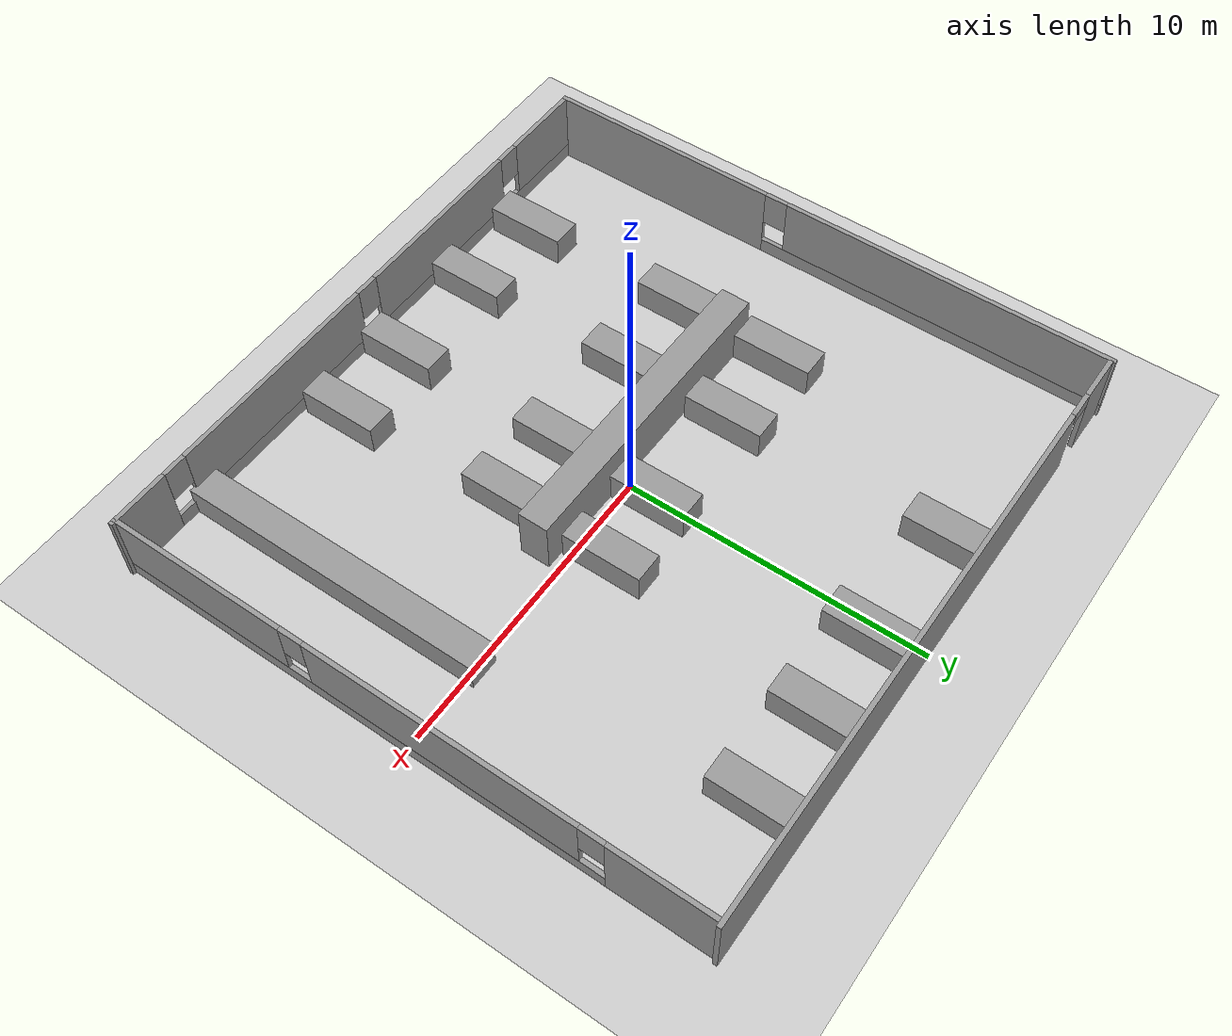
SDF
<sdf version="1.7">
 <world name="default">
  <model name="ground_plane">
   <static>1</static>
   <link name="link">
    <collision name="collision">
     <geometry><plane><normal>0 0 1</normal><size>100 100</size></plane></geometry>
     <surface><friction><ode><mu>100</mu><mu2>50</mu2></ode></friction></surface>
    </collision>
    <visual name="visual">
     <cast_shadows>0</cast_shadows>
     <geometry><plane><normal>0 0 1</normal><size>100 100</size></plane></geometry>
     <material>
      <script><uri>file://media/materials/scripts/gazebo.material</uri><name>Gazebo/Grey</name></script>
     </material>
    </visual>
   </link>
  </model>
  <light name="sun" type="directional">
   <pose>0 0 10 0 -0 0</pose>
   <diffuse>0.8 0.8 0.8 1</diffuse>
   <specular>0.2 0.2 0.2 1</specular>
   <attenuation>
    <range>1000</range>
    <constant>0.9</constant>
    <linear>0.01</linear>
    <quadratic>0.001</quadratic>
   </attenuation>
   <direction>-0.5 0.1 -0.9</direction>
   <spot><inner_angle>0</inner_angle><outer_angle>0</outer_angle><falloff>0</falloff></spot>
  </light>
  <gravity>0 0 -9.8</gravity>
  <model name="Mur_smart_resto">
   <static>1</static>
   <pose>0.070005 0.051909 0 0 -0 0</pose>
   <link name="Wall_10">
    <pose>-10.4753 0.025889 0 0 -0 1.57063</pose>
    <visual name="Wall_10_Visual_0">
     <pose>-6.06646 0 1.25 0 -0 0</pose>
     <geometry><box><size>7.99946 0.15 2.5</size></box></geometry>
     <material>
      <script><uri>file://media/materials/scripts/gazebo.material</uri><name>Gazebo/Grey</name></script>
     </material>
    </visual>
    <collision name="Wall_10_Collision_0">
     <geometry><box><size>7.99946 0.15 2.5</size></box></geometry>
     <pose>-6.06646 0 1.25 0 -0 0</pose>
    </collision>
    <visual name="Wall_10_Visual_1">
     <pose>3.99973 0 0.25 0 -0 0</pose>
     <geometry><box><size>12.1329 0.15 0.5</size></box></geometry>
     <material>
      <script><uri>file://media/materials/scripts/gazebo.material</uri><name>Gazebo/Grey</name></script>
     </material>
    </visual>
    <collision name="Wall_10_Collision_1">
     <geometry><box><size>12.1329 0.15 0.5</size></box></geometry>
     <pose>3.99973 0 0.25 0 -0 0</pose>
    </collision>
    <visual name="Wall_10_Visual_2">
     <pose>4.39973 0 1.5 0 -0 0</pose>
     <geometry><box><size>11.3329 0.15 2</size></box></geometry>
     <material>
      <script><uri>file://media/materials/scripts/gazebo.material</uri><name>Gazebo/Grey</name></script>
     </material>
    </visual>
    <collision name="Wall_10_Collision_2">
     <geometry><box><size>11.3329 0.15 2</size></box></geometry>
     <pose>4.39973 0 1.5 0 -0 0</pose>
    </collision>
    <visual name="Wall_10_Visual_3">
     <pose>-1.66672 0 1.9 0 -0 0</pose>
     <geometry><box><size>0.8 0.15 1.2</size></box></geometry>
     <material>
      <script><uri>file://media/materials/scripts/gazebo.material</uri><name>Gazebo/Grey</name></script>
     </material>
    </visual>
    <collision name="Wall_10_Collision_3">
     <geometry><box><size>0.8 0.15 1.2</size></box></geometry>
     <pose>-1.66672 0 1.9 0 -0 0</pose>
    </collision>
   </link>
   <link name="Wall_7">
    <pose>0.062174 9.88656 0 0 -0 -0.005133</pose>
    <visual name="Wall_7_Visual_0">
     <pose>-9.71026 0 1.25 0 -0 0</pose>
     <geometry><box><size>1.55886 0.15 2.5</size></box></geometry>
     <material>
      <script><uri>file://media/materials/scripts/gazebo.material</uri><name>Gazebo/Grey</name></script>
     </material>
    </visual>
    <collision name="Wall_7_Collision_0">
     <geometry><box><size>1.55886 0.15 2.5</size></box></geometry>
     <pose>-9.71026 0 1.25 0 -0 0</pose>
    </collision>
    <visual name="Wall_7_Visual_1">
     <pose>1.22943 0 1.25 0 -0 0</pose>
     <geometry><box><size>18.5205 0.15 2.5</size></box></geometry>
     <material>
      <script><uri>file://media/materials/scripts/gazebo.material</uri><name>Gazebo/Grey</name></script>
     </material>
    </visual>
    <collision name="Wall_7_Collision_1">
     <geometry><box><size>18.5205 0.15 2.5</size></box></geometry>
     <pose>1.22943 0 1.25 0 -0 0</pose>
    </collision>
    <visual name="Wall_7_Visual_2">
     <pose>-8.48083 0 2.25 0 -0 0</pose>
     <geometry><box><size>0.9 0.15 0.5</size></box></geometry>
     <material>
      <script><uri>file://media/materials/scripts/gazebo.material</uri><name>Gazebo/Grey</name></script>
     </material>
    </visual>
    <collision name="Wall_7_Collision_2">
     <geometry><box><size>0.9 0.15 0.5</size></box></geometry>
     <pose>-8.48083 0 2.25 0 -0 0</pose>
    </collision>
   </link>
   <link name="Wall_8">
    <pose>10.3709 -0.091904 0 0 -0 -1.5708</pose>
    <visual name="Wall_8_Visual_0">
     <pose>-8.27842 0 1.25 0 -0 0</pose>
     <geometry><box><size>3.44316 0.15 2.5</size></box></geometry>
     <material>
      <script><uri>file://media/materials/scripts/gazebo.material</uri><name>Gazebo/Grey</name></script>
     </material>
    </visual>
    <collision name="Wall_8_Collision_0">
     <geometry><box><size>3.44316 0.15 2.5</size></box></geometry>
     <pose>-8.27842 0 1.25 0 -0 0</pose>
    </collision>
    <visual name="Wall_8_Visual_1">
     <pose>1.72158 0 0.25 0 -0 0</pose>
     <geometry><box><size>16.5568 0.15 0.5</size></box></geometry>
     <material>
      <script><uri>file://media/materials/scripts/gazebo.material</uri><name>Gazebo/Grey</name></script>
     </material>
    </visual>
    <collision name="Wall_8_Collision_1">
     <geometry><box><size>16.5568 0.15 0.5</size></box></geometry>
     <pose>1.72158 0 0.25 0 -0 0</pose>
    </collision>
    <visual name="Wall_8_Visual_2">
     <pose>-1.31032 0 1.5 0 -0 0</pose>
     <geometry><box><size>8.89304 0.15 2</size></box></geometry>
     <material>
      <script><uri>file://media/materials/scripts/gazebo.material</uri><name>Gazebo/Grey</name></script>
     </material>
    </visual>
    <collision name="Wall_8_Collision_2">
     <geometry><box><size>8.89304 0.15 2</size></box></geometry>
     <pose>-1.31032 0 1.5 0 -0 0</pose>
    </collision>
    <visual name="Wall_8_Visual_3">
     <pose>6.9681 0 1.5 0 -0 0</pose>
     <geometry><box><size>6.06379 0.15 2</size></box></geometry>
     <material>
      <script><uri>file://media/materials/scripts/gazebo.material</uri><name>Gazebo/Grey</name></script>
     </material>
    </visual>
    <collision name="Wall_8_Collision_3">
     <geometry><box><size>6.06379 0.15 2</size></box></geometry>
     <pose>6.9681 0 1.5 0 -0 0</pose>
    </collision>
    <visual name="Wall_8_Visual_4">
     <pose>-6.15684 0 1.9 0 -0 0</pose>
     <geometry><box><size>0.8 0.15 1.2</size></box></geometry>
     <material>
      <script><uri>file://media/materials/scripts/gazebo.material</uri><name>Gazebo/Grey</name></script>
     </material>
    </visual>
    <collision name="Wall_8_Collision_4">
     <geometry><box><size>0.8 0.15 1.2</size></box></geometry>
     <pose>-6.15684 0 1.9 0 -0 0</pose>
    </collision>
    <visual name="Wall_8_Visual_5">
     <pose>3.53621 0 1.9 0 -0 0</pose>
     <geometry><box><size>0.8 0.15 1.2</size></box></geometry>
     <material>
      <script><uri>file://media/materials/scripts/gazebo.material</uri><name>Gazebo/Grey</name></script>
     </material>
    </visual>
    <collision name="Wall_8_Collision_5">
     <geometry><box><size>0.8 0.15 1.2</size></box></geometry>
     <pose>3.53621 0 1.9 0 -0 0</pose>
    </collision>
   </link>
   <link name="Wall_9">
    <pose>-9.8e-05 -9.9911 0 0 -0 3.13913</pose>
    <visual name="Wall_9_Visual_0">
     <pose>-9.52605 0 1.25 0 -0 0</pose>
     <geometry><box><size>2.05161 0.15 2.5</size></box></geometry>
     <material>
      <script><uri>file://media/materials/scripts/gazebo.material</uri><name>Gazebo/Grey</name></script>
     </material>
    </visual>
    <collision name="Wall_9_Collision_0">
     <geometry><box><size>2.05161 0.15 2.5</size></box></geometry>
     <pose>-9.52605 0 1.25 0 -0 0</pose>
    </collision>
    <visual name="Wall_9_Visual_1">
     <pose>1.02581 0 0.25 0 -0 0</pose>
     <geometry><box><size>19.0521 0.15 0.5</size></box></geometry>
     <material>
      <script><uri>file://media/materials/scripts/gazebo.material</uri><name>Gazebo/Grey</name></script>
     </material>
    </visual>
    <collision name="Wall_9_Collision_1">
     <geometry><box><size>19.0521 0.15 0.5</size></box></geometry>
     <pose>1.02581 0 0.25 0 -0 0</pose>
    </collision>
    <visual name="Wall_9_Visual_2">
     <pose>-3.95634 0 1.5 0 -0 0</pose>
     <geometry><box><size>7.48782 0.15 2</size></box></geometry>
     <material>
      <script><uri>file://media/materials/scripts/gazebo.material</uri><name>Gazebo/Grey</name></script>
     </material>
    </visual>
    <collision name="Wall_9_Collision_2">
     <geometry><box><size>7.48782 0.15 2</size></box></geometry>
     <pose>-3.95634 0 1.5 0 -0 0</pose>
    </collision>
    <visual name="Wall_9_Visual_3">
     <pose>3.71414 0 1.5 0 -0 0</pose>
     <geometry><box><size>6.25314 0.15 2</size></box></geometry>
     <material>
      <script><uri>file://media/materials/scripts/gazebo.material</uri><name>Gazebo/Grey</name></script>
     </material>
    </visual>
    <collision name="Wall_9_Collision_3">
     <geometry><box><size>6.25314 0.15 2</size></box></geometry>
     <pose>3.71414 0 1.5 0 -0 0</pose>
    </collision>
    <visual name="Wall_9_Visual_4">
     <pose>9.09628 0 1.5 0 -0 0</pose>
     <geometry><box><size>2.91115 0.15 2</size></box></geometry>
     <material>
      <script><uri>file://media/materials/scripts/gazebo.material</uri><name>Gazebo/Grey</name></script>
     </material>
    </visual>
    <collision name="Wall_9_Collision_4">
     <geometry><box><size>2.91115 0.15 2</size></box></geometry>
     <pose>9.09628 0 1.5 0 -0 0</pose>
    </collision>
    <visual name="Wall_9_Visual_5">
     <pose>-8.10025 0 1.9 0 -0 0</pose>
     <geometry><box><size>0.8 0.15 1.2</size></box></geometry>
     <material>
      <script><uri>file://media/materials/scripts/gazebo.material</uri><name>Gazebo/Grey</name></script>
     </material>
    </visual>
    <collision name="Wall_9_Collision_5">
     <geometry><box><size>0.8 0.15 1.2</size></box></geometry>
     <pose>-8.10025 0 1.9 0 -0 0</pose>
    </collision>
    <visual name="Wall_9_Visual_6">
     <pose>0.187568 0 1.9 0 -0 0</pose>
     <geometry><box><size>0.8 0.15 1.2</size></box></geometry>
     <material>
      <script><uri>file://media/materials/scripts/gazebo.material</uri><name>Gazebo/Grey</name></script>
     </material>
    </visual>
    <collision name="Wall_9_Collision_6">
     <geometry><box><size>0.8 0.15 1.2</size></box></geometry>
     <pose>0.187568 0 1.9 0 -0 0</pose>
    </collision>
    <visual name="Wall_9_Visual_7">
     <pose>7.24071 0 1.9 0 -0 0</pose>
     <geometry><box><size>0.8 0.15 1.2</size></box></geometry>
     <material>
      <script><uri>file://media/materials/scripts/gazebo.material</uri><name>Gazebo/Grey</name></script>
     </material>
    </visual>
    <collision name="Wall_9_Collision_7">
     <geometry><box><size>0.8 0.15 1.2</size></box></geometry>
     <pose>7.24071 0 1.9 0 -0 0</pose>
    </collision>
   </link>
  </model>
  <model name="table_12">
   <static>1</static>
   <pose>-3.49966 -8.58391 0.5 0 -0 0</pose>
   <link name="link">
    <collision name="collision"><geometry><box><size>1 2.66361 1</size></box></geometry></collision>
    <visual name="visual">
     <geometry><box><size>1 2.66361 1</size></box></geometry>
     <material>
      <script><name>Gazebo/Grey</name><uri>file://media/materials/scripts/gazebo.material</uri></script>
     </material>
    </visual>
   </link>
  </model>
  <model name="Table_13">
   <static>1</static>
   <pose>0.016216 -8.50881 0.5 0 -0 0</pose>
   <link name="link">
    <collision name="collision"><geometry><box><size>1 2.66361 1</size></box></geometry></collision>
    <visual name="visual">
     <geometry><box><size>1 2.66361 1</size></box></geometry>
     <material>
      <script><name>Gazebo/Grey</name><uri>file://media/materials/scripts/gazebo.material</uri></script>
     </material>
    </visual>
   </link>
  </model>
  <model name="Bar">
   <static>1</static>
   <pose>7.45041 -4.83434 0.5 0 -0 0</pose>
   <link name="link">
    <collision name="collision"><geometry><box><size>1 10.2687 1</size></box></geometry></collision>
    <visual name="visual">
     <geometry><box><size>1 10.2687 1</size></box></geometry>
     <material>
      <script><name>Gazebo/Grey</name><uri>file://media/materials/scripts/gazebo.material</uri></script>
     </material>
    </visual>
   </link>
  </model>
  <model name="table_23">
   <static>1</static>
   <pose>0.037866 -2.60829 0.5 0 -0 0</pose>
   <link name="link">
    <collision name="collision"><geometry><box><size>1 2.66361 1</size></box></geometry></collision>
    <visual name="visual">
     <geometry><box><size>1 2.66361 1</size></box></geometry>
     <material>
      <script><name>Gazebo/Grey</name><uri>file://media/materials/scripts/gazebo.material</uri></script>
     </material>
    </visual>
   </link>
  </model>
  <model name="table_22">
   <static>1</static>
   <pose>-3.52904 -2.63976 0.5 0 -0 0</pose>
   <link name="link">
    <collision name="collision"><geometry><box><size>1 2.66361 1</size></box></geometry></collision>
    <visual name="visual">
     <geometry><box><size>1 2.66361 1</size></box></geometry>
     <material>
      <script><name>Gazebo/Grey</name><uri>file://media/materials/scripts/gazebo.material</uri></script>
     </material>
    </visual>
   </link>
  </model>
  <model name="table_21">
   <static>1</static>
   <pose>-6.57978 -2.6451 0.5 0 -0 0</pose>
   <link name="link">
    <collision name="collision"><geometry><box><size>1 2.66361 1</size></box></geometry></collision>
    <visual name="visual">
     <geometry><box><size>1 2.66361 1</size></box></geometry>
     <material>
      <script><name>Gazebo/Grey</name><uri>file://media/materials/scripts/gazebo.material</uri></script>
     </material>
    </visual>
   </link>
  </model>
  <model name="Table_2">
   <static>1</static>
   <pose>-6.51182 0.029884 0.5 0 -0 0</pose>
   <link name="link">
    <collision name="collision"><geometry><box><size>1 0.667478 0.20326</size></box></geometry></collision>
    <visual name="visual">
     <geometry><box><size>1 0.667478 0.20326</size></box></geometry>
     <material>
      <script><name>Gazebo/Grey</name><uri>file://media/materials/scripts/gazebo.material</uri></script>
     </material>
    </visual>
   </link>
  </model>
  <model name="table_33">
   <static>1</static>
   <pose>0.116693 0.917075 0.5 0 -0 0</pose>
   <link name="link">
    <collision name="collision"><geometry><box><size>1 2.66361 1</size></box></geometry></collision>
    <visual name="visual">
     <geometry><box><size>1 2.66361 1</size></box></geometry>
     <material>
      <script><name>Gazebo/Grey</name><uri>file://media/materials/scripts/gazebo.material</uri></script>
     </material>
    </visual>
   </link>
  </model>
  <model name="table_32">
   <static>1</static>
   <pose>-3.59358 1.15101 0.5 0 -0 0</pose>
   <link name="link">
    <collision name="collision"><geometry><box><size>1 2.66361 1</size></box></geometry></collision>
    <visual name="visual">
     <geometry><box><size>1 2.66361 1</size></box></geometry>
     <material>
      <script><name>Gazebo/Grey</name><uri>file://media/materials/scripts/gazebo.material</uri></script>
     </material>
    </visual>
   </link>
  </model>
  <model name="table_31">
   <static>1</static>
   <pose>-6.45855 1.07215 0.5 0 -0 0</pose>
   <link name="link">
    <collision name="collision"><geometry><box><size>1 2.66361 1</size></box></geometry></collision>
    <visual name="visual">
     <geometry><box><size>1 2.66361 1</size></box></geometry>
     <material>
      <script><name>Gazebo/Grey</name><uri>file://media/materials/scripts/gazebo.material</uri></script>
     </material>
    </visual>
   </link>
  </model>
  <model name="table_41">
   <static>1</static>
   <pose>-3.53421 8.65679 0.5 0 -0 0</pose>
   <link name="link">
    <collision name="collision"><geometry><box><size>1 2.66361 1</size></box></geometry></collision>
    <visual name="visual">
     <geometry><box><size>1 2.66361 1</size></box></geometry>
     <material>
      <script><name>Gazebo/Grey</name><uri>file://media/materials/scripts/gazebo.material</uri></script>
     </material>
    </visual>
   </link>
  </model>
  <model name="table_42">
   <static>1</static>
   <pose>0.488269 8.38668 0.5 0 -0 0</pose>
   <link name="link">
    <collision name="collision"><geometry><box><size>1 2.66361 1</size></box></geometry></collision>
    <visual name="visual">
     <geometry><box><size>1 2.66361 1</size></box></geometry>
     <material>
      <script><name>Gazebo/Grey</name><uri>file://media/materials/scripts/gazebo.material</uri></script>
     </material>
    </visual>
   </link>
  </model>
  <model name="table_34">
   <static>1</static>
   <pose>2.56397 1.07046 0.5 0 -0 0</pose>
   <link name="link">
    <collision name="collision"><geometry><box><size>1 2.66361 1</size></box></geometry></collision>
    <visual name="visual">
     <geometry><box><size>1 2.66361 1</size></box></geometry>
     <material>
      <script><name>Gazebo/Grey</name><uri>file://media/materials/scripts/gazebo.material</uri></script>
     </material>
    </visual>
   </link>
  </model>
  <model name="table_24">
   <static>1</static>
   <pose>2.50913 -2.59064 0.5 0 -0 0</pose>
   <link name="link">
    <collision name="collision"><geometry><box><size>1 2.66361 1</size></box></geometry></collision>
    <visual name="visual">
     <geometry><box><size>1 2.66361 1</size></box></geometry>
     <material>
      <script><name>Gazebo/Grey</name><uri>file://media/materials/scripts/gazebo.material</uri></script>
     </material>
    </visual>
   </link>
  </model>
  <model name="table_14">
   <static>1</static>
   <pose>2.84165 -8.41818 0.5 0 -0 0</pose>
   <link name="link">
    <collision name="collision"><geometry><box><size>1 2.66361 1</size></box></geometry></collision>
    <visual name="visual">
     <geometry><box><size>1 2.66361 1</size></box></geometry>
     <material>
      <script><name>Gazebo/Grey</name><uri>file://media/materials/scripts/gazebo.material</uri></script>
     </material>
    </visual>
   </link>
  </model>
  <model name="table_43">
   <static>1</static>
   <pose>3.44204 8.4719 0.5 0 -0 0</pose>
   <link name="link">
    <collision name="collision"><geometry><box><size>1 2.66361 1</size></box></geometry></collision>
    <visual name="visual">
     <geometry><box><size>1 2.66361 1</size></box></geometry>
     <material>
      <script><name>Gazebo/Grey</name><uri>file://media/materials/scripts/gazebo.material</uri></script>
     </material>
    </visual>
   </link>
  </model>
  <model name="table_44">
   <static>1</static>
   <pose>6.48712 8.46147 0.5 0 -0 0</pose>
   <link name="link">
    <collision name="collision"><geometry><box><size>1 2.66361 1</size></box></geometry></collision>
    <visual name="visual">
     <geometry><box><size>1 2.66361 1</size></box></geometry>
     <material>
      <script><name>Gazebo/Grey</name><uri>file://media/materials/scripts/gazebo.material</uri></script>
     </material>
    </visual>
   </link>
  </model>
  <magnetic_field>6e-06 2.3e-05 -4.2e-05</magnetic_field>
  <atmosphere type="adiabatic"/>
  <physics type="ode">
   <max_step_size>0.001</max_step_size>
   <real_time_factor>1</real_time_factor>
   <real_time_update_rate>1000</real_time_update_rate>
  </physics>
  <scene><ambient>0.4 0.4 0.4 1</ambient><background>0.7 0.7 0.7 1</background><shadows>1</shadows></scene>
  <spherical_coordinates>
   <surface_model>EARTH_WGS84</surface_model>
   <latitude_deg>0</latitude_deg>
   <longitude_deg>0</longitude_deg>
   <elevation>0</elevation>
   <heading_deg>0</heading_deg>
  </spherical_coordinates>
  <model name="table_11">
   <static>1</static>
   <pose>-6.52883 -8.43574 0.5 0 -0 0</pose>
   <link name="link">
    <collision name="collision"><geometry><box><size>1 2.66361 1</size></box></geometry></collision>
    <visual name="visual">
     <geometry><box><size>1 2.66361 1</size></box></geometry>
     <material>
      <script><name>Gazebo/Grey</name><uri>file://media/materials/scripts/gazebo.material</uri></script>
     </material>
    </visual>
   </link>
  </model>
  <model name="separation_rangee">
   <static>1</static>
   <pose>-1.55044 -0.794645 0.500001 1e-05 -0.001133 -1.57933</pose>
   <link name="link">
    <collision name="collision"><geometry><box><size>1 10.3403 2.62744</size></box></geometry></collision>
    <visual name="visual">
     <geometry><box><size>1 10.3403 2.62744</size></box></geometry>
     <material>
      <script><name>Gazebo/Grey</name><uri>file://media/materials/scripts/gazebo.material</uri></script>
     </material>
    </visual>
   </link>
  </model>
 </world>
</sdf>
